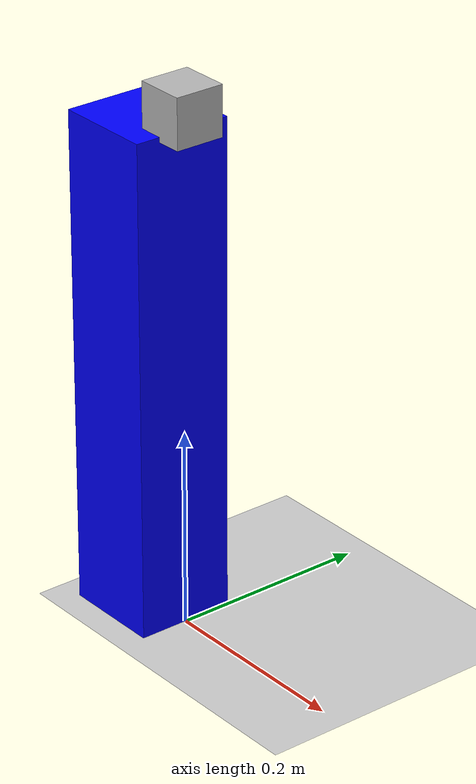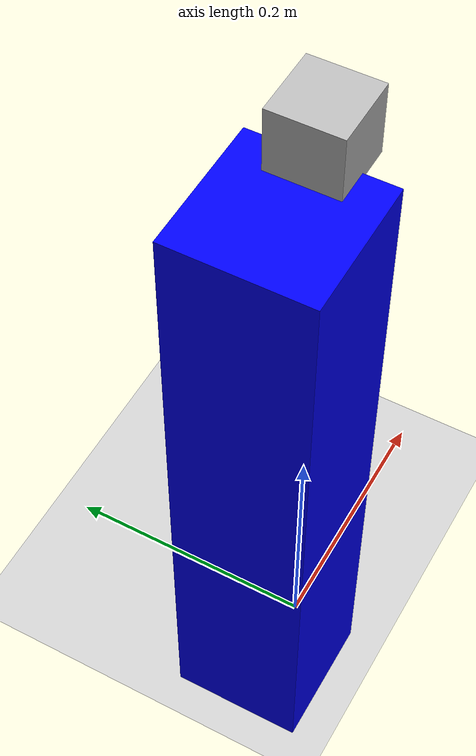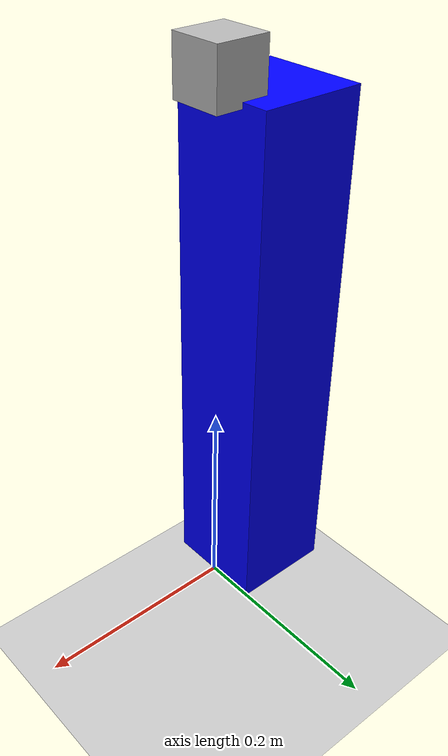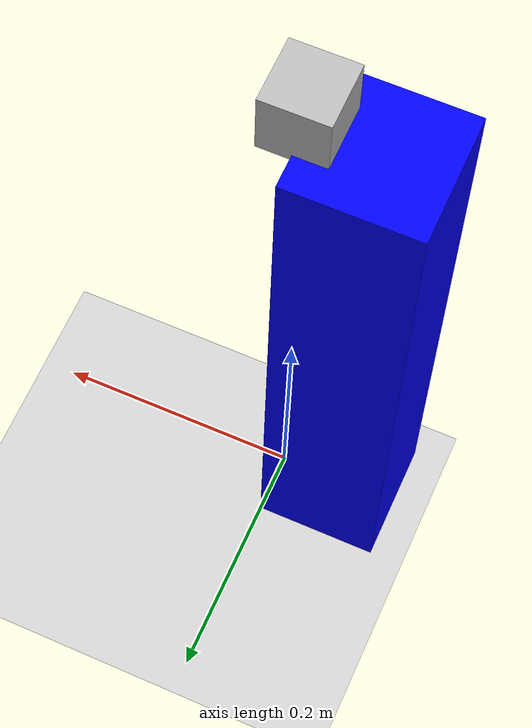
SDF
<?xml version="1.0" ?>
<sdf version="1.10">
    <world name="box_world">
        <physics name="1ms" type="ignored">
            <max_step_size>0.001</max_step_size>
            <real_time_factor>1.0</real_time_factor>
        </physics>
        <plugin
            filename="gz-sim-physics-system"
            name="gz::sim::systems::Physics">
        </plugin>
        <plugin
            filename="gz-sim-user-commands-system"
            name="gz::sim::systems::UserCommands">
        </plugin>
        <plugin
            filename="gz-sim-scene-broadcaster-system"
            name="gz::sim::systems::SceneBroadcaster">
        </plugin>

        <light type="directional" name="sun">
            <cast_shadows>true</cast_shadows>
            <pose>0 0 10 0 0 0</pose>
            <diffuse>0.8 0.8 0.8 1</diffuse>
            <specular>0.2 0.2 0.2 1</specular>
            <attenuation>
                <range>1000</range>
                <constant>0.9</constant>
                <linear>0.01</linear>
                <quadratic>0.001</quadratic>
            </attenuation>
            <direction>-0.5 0.1 -0.9</direction>
        </light>

        <model name="ground_plane">
            <static>true</static>
            <link name="link">
                <collision name="collision">
                <geometry>
                    <plane>
                    <normal>0 0 1</normal>
                    </plane>
                </geometry>
                </collision>
                <visual name="visual">
                <geometry>
                    <plane>
                    <normal>0 0 1</normal>
                    <size>100 100</size>
                    </plane>
                </geometry>
                <material>
                    <ambient>0.8 0.8 0.8 1</ambient>
                    <diffuse>0.8 0.8 0.8 1</diffuse>
                    <specular>0.8 0.8 0.8 1</specular>
                </material>
                </visual>
            </link>
        </model>

        <model name='pedestal'>
            <static>true</static>
            <pose>-0.05 0 0.25 0 0 0</pose><!--pose relative to the world-->
            <link name='box'>
                <visual name='visual'>
                    <geometry>
                        <box>
                            <size>0.1 0.1 0.5</size>
                        </box>
                    </geometry>
                    <!--let's add color to our link-->
                    <material>
                        <ambient>0.0 0.0 1.0 1</ambient>
                        <diffuse>0.0 0.0 1.0 1</diffuse>
                        <specular>0.0 0.0 1.0 1</specular>
                    </material>
                </visual>
                <collision name='collision'>
                    <geometry>
                        <box>
                            <size>0.1 0.1 0.5</size>
                        </box>
                    </geometry>
                </collision>
            </link>
        </model>

        <!-- A puzzlebot robot -->
        <include>
            <uri>/home/reto/puzzlebot_ros/src/puzzlebot_ros/gazebo/puzzlebot_lidar/model.sdf</uri>
            <pose>0 0 0.49 0 0 0</pose>
        </include>

    </world>
</sdf>

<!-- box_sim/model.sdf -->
<sdf version='1.4'>
    <model name='box_sim'>
    <static>true</static>

        <link name='link0'>
            <pose>0 0 0.03 0 0 0</pose>

            <visual name='visual'>
                <geometry>
                    <mesh>
                        <uri>./meshes/box_brick.dae</uri>
                    </mesh>
                </geometry>
            </visual>

            <collision name='collision'>
                <pose>0 0 0 0 0 0</pose>
                <geometry>
                    <box>
                        <size>0.05 0.05 0.05</size>
                    </box>
                </geometry>
            </collision>

        </link>

    </model>

</sdf>
